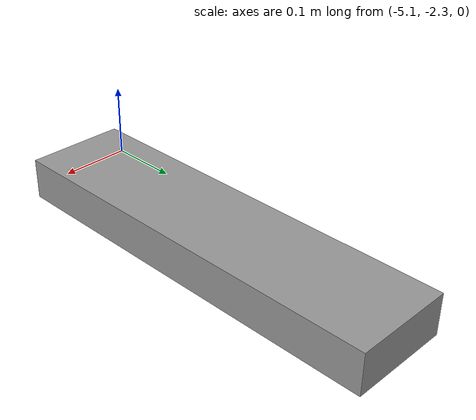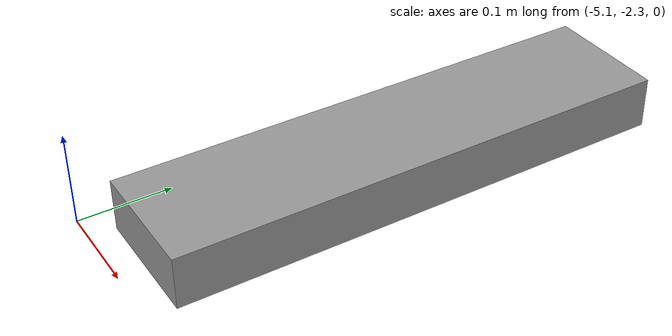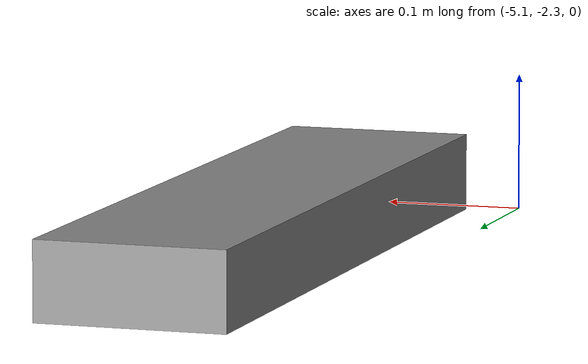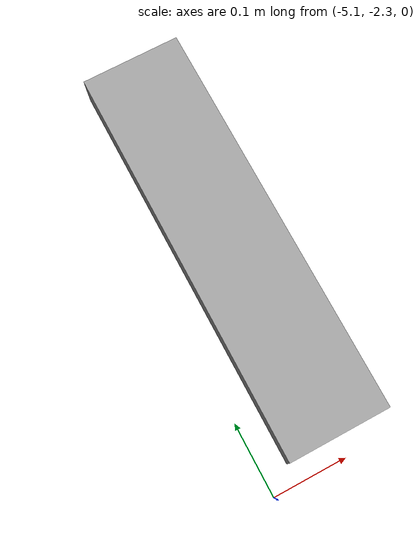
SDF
<?xml version="1.0" ?>
<sdf version="1.5">
  <model name='unit_box'>
      <pose frame=''>-5 -2 0.03 0 -0 0</pose>
      <link name='link'>
        <inertial>
          <mass>5</mass>
          <inertia>
            <ixx>0.124567</ixx>
            <ixy>0</ixy>
            <ixz>0</ixz>
            <iyy>0.008865</iyy>
            <iyz>0</iyz>
            <izz>0.13082</izz>
          </inertia>
        </inertial>
        <collision name='collision'>
          <geometry>
            <box>
              <size>0.135 0.545 0.056</size>
            </box>
          </geometry>
          <max_contacts>10</max_contacts>
          <surface>
            <contact>
              <ode/>
            </contact>
            <bounce/>
            <friction>
              <torsional>
                <ode/>
              </torsional>
              <ode/>
            </friction>
          </surface>
        </collision>
        <visual name='visual'>
          <geometry>
            <box>
              <size>0.135 0.545 0.056</size>
            </box>
          </geometry>
          <material>
            <script>
              <name>Gazebo/Grey</name>
              <uri>file://media/materials/scripts/gazebo.material</uri>
            </script>
          </material>
        </visual>
        <self_collide>0</self_collide>
        <enable_wind>0</enable_wind>
        <kinematic>0</kinematic>
      </link>
    </model>
</sdf>
